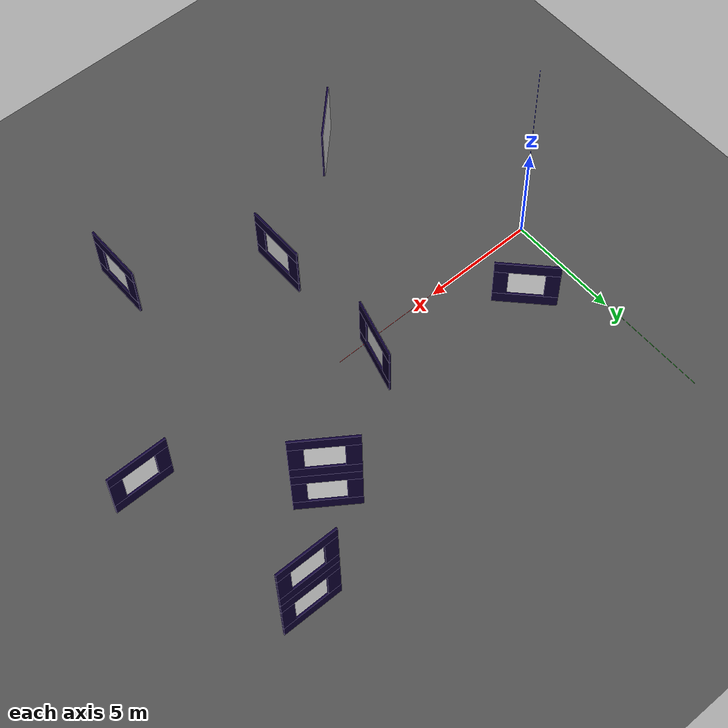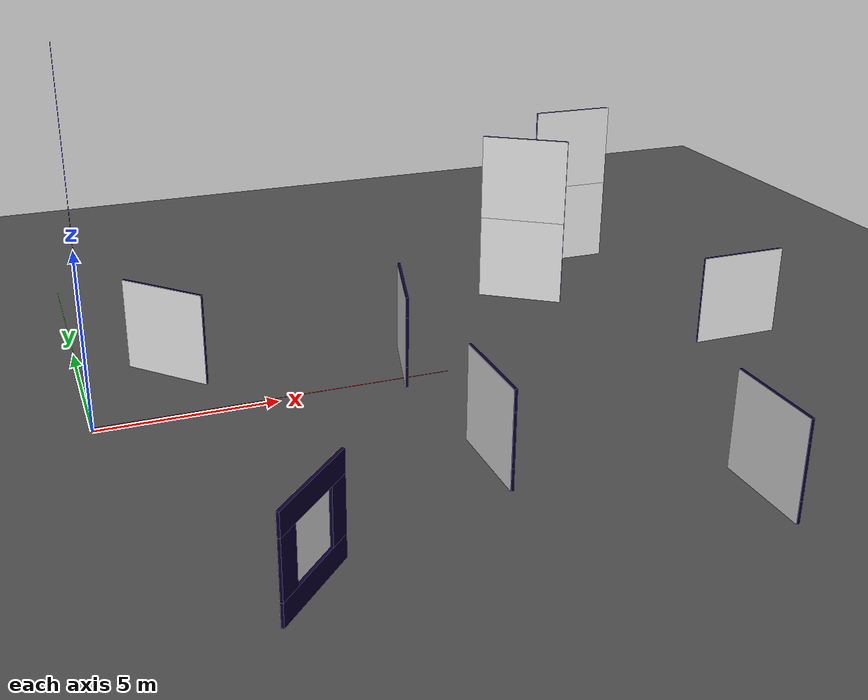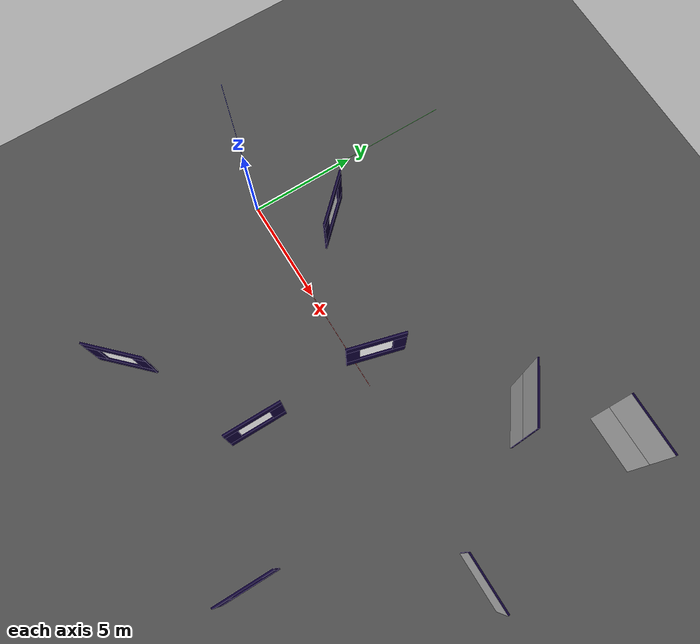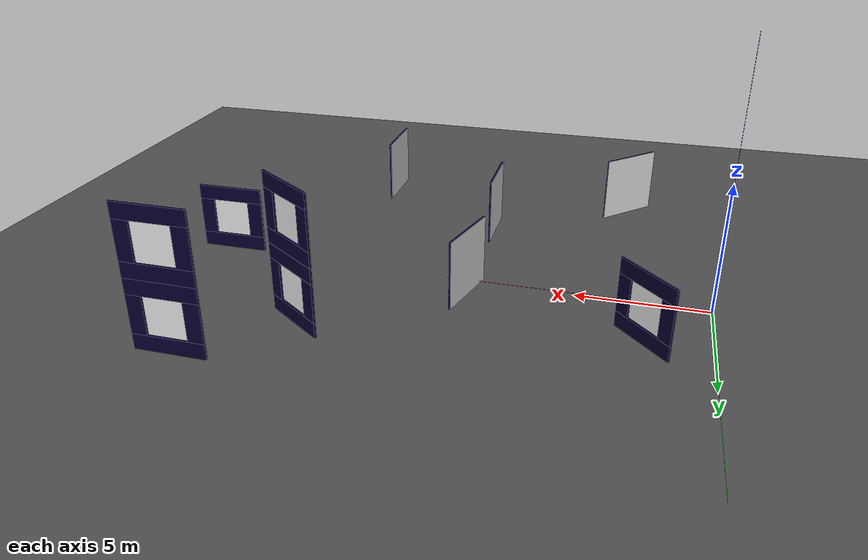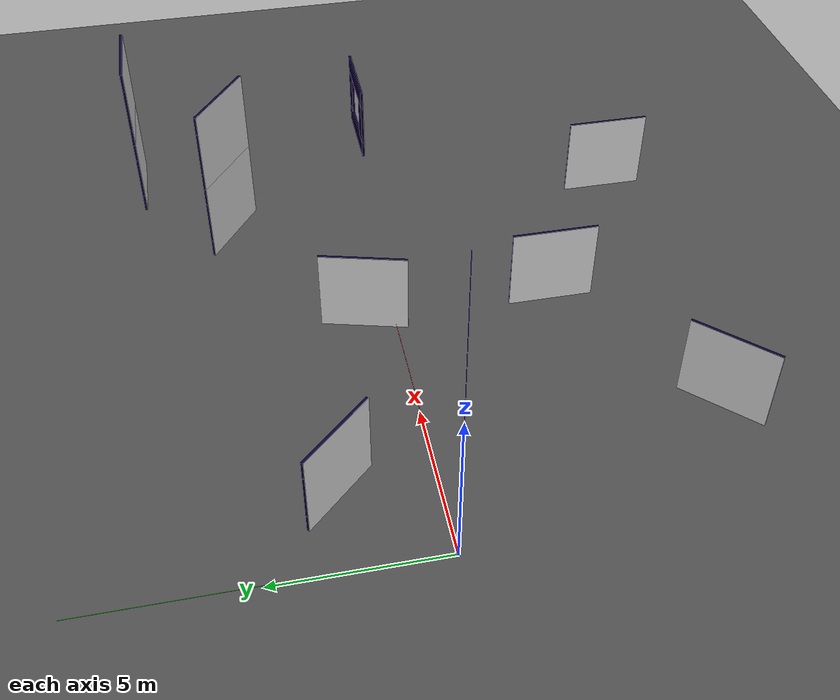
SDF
<sdf version="1.9">
 <world name="track_gates2">
  <physics name="1ms" type="ignore">
   <max_step_size>0.001</max_step_size>
   <real_time_factor>1.0</real_time_factor>
  </physics>
  <plugin filename="gz-sim-physics-system" name="gz::sim::systems::Physics"/>
  <plugin filename="gz-sim-sensors-system" name="gz::sim::systems::Sensors">
   <render_engine>ogre2</render_engine>
  </plugin>
  <plugin filename="gz-sim-user-commands-system" name="gz::sim::systems::UserCommands"/>
  <plugin filename="gz-sim-scene-broadcaster-system" name="gz::sim::systems::SceneBroadcaster"/>
  <plugin filename="gz-sim-imu-system" name="gz::sim::systems::Imu"/>
  <plugin filename="gz-sim-navsat-system" name="gz::sim::systems::NavSat"/>
  <scene><ambient>1.0 1.0 1.0</ambient><background>0.8 0.8 0.8</background></scene>
  <spherical_coordinates>
   <latitude_deg>25.59156740</latitude_deg>
   <longitude_deg>-100.27814722</longitude_deg>
   <elevation>640</elevation>
   <heading_deg>0</heading_deg>
   <surface_model>EARTH_WGS84</surface_model>
  </spherical_coordinates>
  <light name="sun" type="directional">
   <pose>0 0 10 0 0 0</pose>
   <diffuse>1 1 1 1</diffuse>
   <specular>0.1 0.1 0.1 1</specular>
   <attenuation>
    <range>1000</range>
    <constant>0.9</constant>
    <linear>0.01</linear>
    <quadratic>0.001</quadratic>
   </attenuation>
   <direction>-0.5 0.5 -1</direction>
  </light>
  <model name="ground_plane">
   <static>true</static>
   <link name="link">
    <collision name="collision">
     <geometry><plane><normal>0 0 1</normal><size>100 100</size></plane></geometry>
    </collision>
    <visual name="visual">
     <geometry><plane><normal>0 0 1</normal><size>100 100</size></plane></geometry>
     <material><ambient>0.3 0.3 0.3 1</ambient><diffuse>0.3 0.3 0.3 1</diffuse></material>
    </visual>
   </link>
  </model>
  <model name="axes">
   <static>1</static>
   <link name="link">
    <visual name="r">
     <cast_shadows>0</cast_shadows>
     <pose>5 0 0.1 0 0 0</pose>
     <geometry><box><size>10 0.01 0.01</size></box></geometry>
     <material>
      <ambient>1 0 0 0.8</ambient>
      <diffuse>1 0 0 0.8</diffuse>
      <emissive>1 0 0 0.8</emissive>
      <specular>0.5 0.5 0.5 0.8</specular>
     </material>
    </visual>
    <visual name="g">
     <cast_shadows>0</cast_shadows>
     <pose>0 5 0.1 0 0 0</pose>
     <geometry><box><size>0.01 10 0.01</size></box></geometry>
     <material>
      <ambient>0 1 0 0.8</ambient>
      <diffuse>0 1 0 0.8</diffuse>
      <emissive>0 1 0 0.8</emissive>
      <specular>0.5 0.5 0.5 0.8</specular>
     </material>
    </visual>
    <visual name="b">
     <cast_shadows>0</cast_shadows>
     <pose>0 0 5.1 0 0 0</pose>
     <geometry><box><size>0.01 0.01 10</size></box></geometry>
     <material>
      <ambient>0 0 1 0.8</ambient>
      <diffuse>0 0 1 0.8</diffuse>
      <emissive>0 0 1 0.8</emissive>
      <specular>0.5 0.5 0.5 0.8</specular>
     </material>
    </visual>
    <sensor name="navsat_sensor" type="navsat"><always_on>1</always_on><update_rate>1</update_rate></sensor>
   </link>
  </model>
  <include>
   <uri>model://gate</uri>
   <name>gate1</name>
   <pose>2.44 2.71 0 0 0 2.332112</pose>
   <static>true</static>
  </include>
  <include>
   <uri>model://gate</uri>
   <name>gate2</name>
   <pose>8.95 0.9299 0 0 0 1.3077788817244544</pose>
   <static>true</static>
  </include>
  <include>
   <uri>model://double_gate</uri>
   <name>gate3</name>
   <pose>14.3799 4.5299 0 0 0 2.5275894959432916</pose>
   <static>true</static>
  </include>
  <include>
   <uri>model://double_gate</uri>
   <name>gate4</name>
   <pose>17.58 7.4599 0 0 0 3.1340914110113207</pose>
   <static>true</static>
  </include>
  <include>
   <uri>model://gate</uri>
   <name>gate5</name>
   <pose>19.3 -0.5199 0 0 0 3.1415963267948968</pose>
   <static>true</static>
  </include>
  <include>
   <uri>model://gate</uri>
   <name>gate6</name>
   <pose>14.54 -8.59 0 0 0 1.5708</pose>
   <static>true</static>
  </include>
  <include>
   <uri>model://gate</uri>
   <name>gate7</name>
   <pose>9.04 -5.07 0 0 0 1.5708</pose>
   <static>true</static>
  </include>
  <include>
   <uri>model://gate</uri>
   <name>gate8</name>
   <pose>3.54 -8.59 0 0 0 0.7854018366025517</pose>
   <static>true</static>
  </include>
 </world>
</sdf>

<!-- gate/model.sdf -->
<sdf version="1.9">
  <model name="gate">
    <static>true</static>
    <!-- Definición del primer panel lateral -->
    <link name="side_panel_left">
      <pose>1.05 0 1.35 0 0 0</pose>
      <collision name="collision">
        <geometry>
          <box>
            <size>0.6 0.08 1.5</size>
          </box>
        </geometry>
      </collision>
      <visual name="visual">
        <geometry>
          <box>
            <size>0.6 0.08 1.5</size>
          </box>
        </geometry>
        <material>
          <ambient>0.05 0 0.2 1</ambient>
          <diffuse>0.05 0 0.2 1</diffuse>

        </material>
      </visual>
    </link>
    <!-- Definición del segundo panel lateral -->
    <link name="side_panel_right">
      <pose>-1.05 0 1.35 0 0 0</pose>
      <collision name="collision">
        <geometry>
          <box>
            <size>0.6 0.08 1.5</size>
          </box>
        </geometry>
      </collision>
      <visual name="visual">
        <geometry>
          <box>
            <size>0.6 0.08 1.5</size>
          </box>
        </geometry>
        <material>
          <ambient>0.05 0 0.2 1</ambient>
          <diffuse>0.05 0 0.2 1</diffuse>
        </material>
      </visual>
    </link>
    <!-- Definición de la barra superior -->
    <link name="top_bar">
      <pose>0 0 2.4 0 0 0</pose>
      <collision name="collision">
        <geometry>
          <box>
            <size>2.7 0.08 0.6</size>
          </box>
        </geometry>
      </collision>
      <visual name="visual">
        <geometry>
          <box>
            <size>2.7 0.08 0.6</size>
          </box>
        </geometry>
        <material>
          <ambient>0.05 0 0.2 1</ambient>
          <diffuse>0.05 0 0.2 1</diffuse>
        </material>
      </visual>
    </link>
    <!-- Definición de la barra inferior -->
    <link name="bottom_bar">
      <pose>0 0 0.3 0 0 0</pose>
      <collision name="collision">
        <geometry>
          <box>
            <size>2.7 0.08 0.6</size>
          </box>
        </geometry>
      </collision>
      <visual name="visual">
        <geometry>
          <box>
            <size>2.7 0.08 0.6</size>
          </box>
        </geometry>
        <material>
          <ambient>0.05 0 0.2 1</ambient>
          <diffuse>0.05 0 0.2 1</diffuse>
        </material>
      </visual>
    </link>
    <link name="gate_banner">
      <!-- Ajusta pose para que "tapice" el frente del gate -->
      <pose>0 0.05 1.35 1.5708 0 3.1416 </pose>
      <visual name="banner_visual">
        <cast_shadows>false</cast_shadows>
        <geometry>
          <plane>
            <normal>0 0 1</normal>
            <size>2.7 2.7</size> <!-- Ajustar a tu gusto -->
          </plane>
        </geometry>
        <material>
          <ambient>1 1 1 1</ambient>
          <diffuse>1 1 1 1</diffuse>
          <pbr>
            <metal>
              <albedo_map>textures/Gate_design.png</albedo_map>
              <roughness>0.6</roughness>
              <metalness>0</metalness>
            </metal>
          </pbr>
        </material>
      </visual>
      <!-- Sin collision para que sea "solo visual" -->
    </link>
  </model>
</sdf>

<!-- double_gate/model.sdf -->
<sdf version="1.9">
  <model name="gate">
    <static>true</static>
    <!-- Definición del primer panel lateral -->
    <link name="side_panel_left_bottom">
      <pose>1.05 0 1.35 0 0 0</pose>
      <collision name="collision">
        <geometry>
          <box>
            <size>0.6 0.08 1.5</size>
          </box>
        </geometry>
      </collision>
      <visual name="visual">
        <geometry>
          <box>
            <size>0.6 0.08 1.5</size>
          </box>
        </geometry>
        <material>
          <ambient>0.05 0 0.2 1</ambient>
          <diffuse>0.05 0 0.2 1</diffuse>

        </material>
      </visual>
    </link>
    <!-- Definición del segundo panel lateral -->
    <link name="side_panel_right_bottom">
      <pose>-1.05 0 1.35 0 0 0</pose>
      <collision name="collision">
        <geometry>
          <box>
            <size>0.6 0.08 1.5</size>
          </box>
        </geometry>
      </collision>
      <visual name="visual">
        <geometry>
          <box>
            <size>0.6 0.08 1.5</size>
          </box>
        </geometry>
        <material>
          <ambient>0.05 0 0.2 1</ambient>
          <diffuse>0.05 0 0.2 1</diffuse>
        </material>
      </visual>
    </link>
    <!-- Definición de la barra superior -->
    <link name="top_bar_bottom">
      <pose>0 0 2.4 0 0 0</pose>
      <collision name="collision">
        <geometry>
          <box>
            <size>2.7 0.08 0.6</size>
          </box>
        </geometry>
      </collision>
      <visual name="visual">
        <geometry>
          <box>
            <size>2.7 0.08 0.6</size>
          </box>
        </geometry>
        <material>
          <ambient>0.05 0 0.2 1</ambient>
          <diffuse>0.05 0 0.2 1</diffuse>
        </material>
      </visual>
    </link>
    <!-- Definición de la barra inferior -->
    <link name="bottom_bar_bottom">
      <pose>0 0 0.3 0 0 0</pose>
      <collision name="collision">
        <geometry>
          <box>
            <size>2.7 0.08 0.6</size>
          </box>
        </geometry>
      </collision>
      <visual name="visual">
        <geometry>
          <box>
            <size>2.7 0.08 0.6</size>
          </box>
        </geometry>
        <material>
          <ambient>0.05 0 0.2 1</ambient>
          <diffuse>0.05 0 0.2 1</diffuse>
        </material>
      </visual>
    </link>
    <link name="gate_banner_bottom">
      <!-- Ajusta pose para que "tapice" el frente del gate -->
      <pose>0 0.05 1.35 1.5708 0 3.1416 </pose>
      <visual name="banner_visual">
        <cast_shadows>false</cast_shadows>
        <geometry>
          <plane>
            <normal>0 0 1</normal>
            <size>2.7 2.7</size> <!-- Ajustar a tu gusto -->
          </plane>
        </geometry>
        <material>
          <ambient>1 1 1 1</ambient>
          <diffuse>1 1 1 1</diffuse>
          <pbr>
            <metal>
              <albedo_map>textures/Gate_design.png</albedo_map>
              <roughness>0.6</roughness>
              <metalness>0</metalness>
            </metal>
          </pbr>
        </material>
      </visual>
      <!-- Sin collision para que sea "solo visual" -->
    </link>
    <link name="side_panel_left_top">
      <pose>1.05 0 4.05 0 0 0</pose>
      <collision name="collision">
        <geometry>
          <box>
            <size>0.6 0.08 1.5</size>
          </box>
        </geometry>
      </collision>
      <visual name="visual">
        <geometry>
          <box>
            <size>0.6 0.08 1.5</size>
          </box>
        </geometry>
        <material>
          <ambient>0.05 0 0.2 1</ambient>
          <diffuse>0.05 0 0.2 1</diffuse>

        </material>
      </visual>
    </link>
    <!-- Definición del segundo panel lateral -->
    <link name="side_panel_right_top">
      <pose>-1.05 0 4.05 0 0 0</pose>
      <collision name="collision">
        <geometry>
          <box>
            <size>0.6 0.08 1.5</size>
          </box>
        </geometry>
      </collision>
      <visual name="visual">
        <geometry>
          <box>
            <size>0.6 0.08 1.5</size>
          </box>
        </geometry>
        <material>
          <ambient>0.05 0 0.2 1</ambient>
          <diffuse>0.05 0 0.2 1</diffuse>
        </material>
      </visual>
    </link>
    <!-- Definición de la barra superior -->
    <link name="top_bar_top">
      <pose>0 0 5.1 0 0 0</pose>
      <collision name="collision">
        <geometry>
          <box>
            <size>2.7 0.08 0.6</size>
          </box>
        </geometry>
      </collision>
      <visual name="visual">
        <geometry>
          <box>
            <size>2.7 0.08 0.6</size>
          </box>
        </geometry>
        <material>
          <ambient>0.05 0 0.2 1</ambient>
          <diffuse>0.05 0 0.2 1</diffuse>
        </material>
      </visual>
    </link>
    <!-- Definición de la barra inferior -->
    <link name="bottom_bar_top">
      <pose>0 0 3 0 0 0</pose>
      <collision name="collision">
        <geometry>
          <box>
            <size>2.7 0.08 0.6</size>
          </box>
        </geometry>
      </collision>
      <visual name="visual">
        <geometry>
          <box>
            <size>2.7 0.08 0.6</size>
          </box>
        </geometry>
        <material>
          <ambient>0.05 0 0.2 1</ambient>
          <diffuse>0.05 0 0.2 1</diffuse>
        </material>
      </visual>
    </link>
    <link name="gate_banner_top">
      <!-- Ajusta pose para que "tapice" el frente del gate -->
      <pose>0 0.05 4.05 1.5708 0 3.1416 </pose>
      <visual name="banner_visual">
        <cast_shadows>false</cast_shadows>
        <geometry>
          <plane>
            <normal>0 0 1</normal>
            <size>2.7 2.7</size> <!-- Ajustar a tu gusto -->
          </plane>
        </geometry>
        <material>
          <ambient>1 1 1 1</ambient>
          <diffuse>1 1 1 1</diffuse>
          <pbr>
            <metal>
              <albedo_map>textures/Gate_design.png</albedo_map>
              <roughness>0.6</roughness>
              <metalness>0</metalness>
            </metal>
          </pbr>
        </material>
      </visual>
      <!-- Sin collision para que sea "solo visual" -->
    </link>
  </model>
</sdf>
